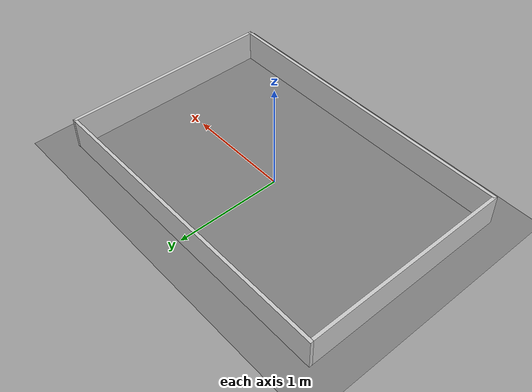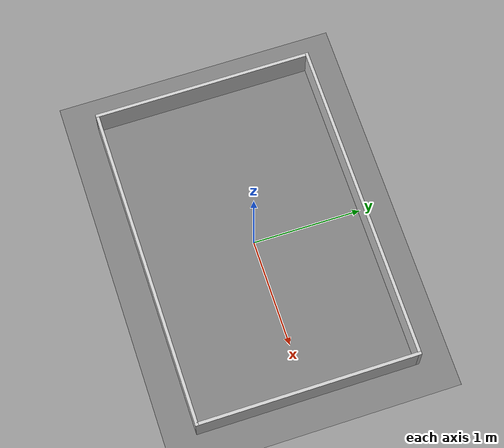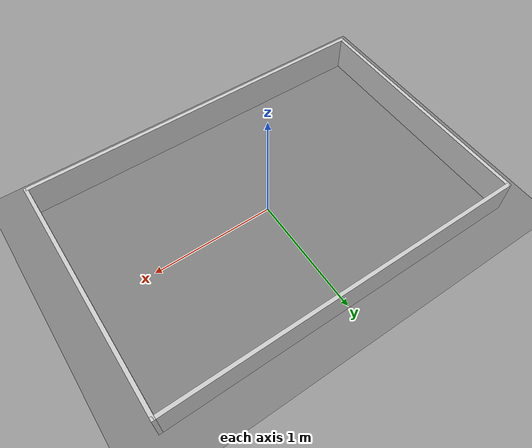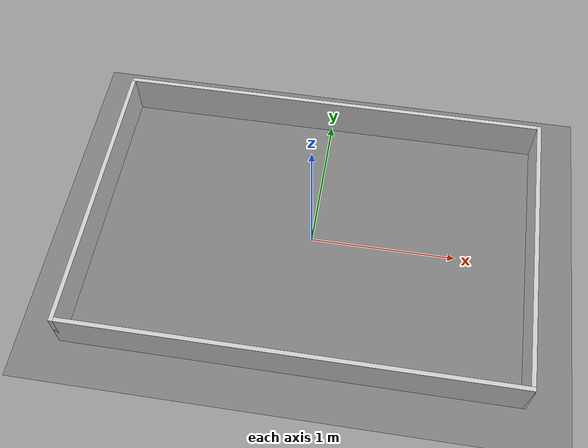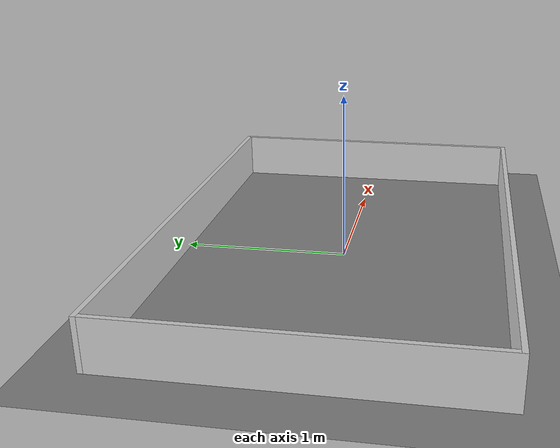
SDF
<sdf version='1.9'>
  <world name='default'>

    <plugin filename="gz-sim-physics-system" name="gz::sim::systems::Physics">
      <engine><filename>gz-physics-dartsim-plugin</filename></engine>
    </plugin>
    <plugin filename="gz-sim-user-commands-system" name="gz::sim::systems::UserCommands"/>
    <plugin filename="gz-sim-scene-broadcaster-system" name="gz::sim::systems::SceneBroadcaster"/>
    <plugin filename="gz-sim-sensors-system" name="gz::sim::systems::Sensors">
      <render_engine>ogre2</render_engine>
    </plugin>
    <plugin filename="gz-sim-imu-system" name="gz::sim::systems::Imu"/>
    <plugin filename="gz-sim-contact-system" name="gz::sim::systems::Contact"/>

    <light name='sun' type='directional'>
      <cast_shadows>1</cast_shadows>
      <pose>0 0 10 0 0 0</pose>
      <diffuse>0.8 0.8 0.8 1</diffuse>
      <specular>0.2 0.2 0.2 1</specular>
      <attenuation>
        <range>1000</range>
        <constant>0.9</constant>
        <linear>0.01</linear>
        <quadratic>0.001</quadratic>
      </attenuation>
      <direction>-0.5 0.1 -0.9</direction>
    </light>

    <model name='ground_plane'>
      <static>true</static>
      <link name='link'>
        <collision name='collision'>
          <geometry>
            <plane>
              <normal>0 0 1</normal>
              <size>100 100</size>
            </plane>
          </geometry>
          <surface>
            <friction>
              <ode>
                <mu>100</mu>
                <mu2>50</mu2>
              </ode>
            </friction>
          </surface>
        </collision>
        <visual name='visual'>
          <cast_shadows>false</cast_shadows>
          <geometry>
            <plane>
              <normal>0 0 1</normal>
              <size>100 100</size>
            </plane>
          </geometry>
          <material>
            <ambient>0.5 0.5 0.5 1</ambient>
            <diffuse>0.5 0.5 0.5 1</diffuse>
            <specular>0.1 0.1 0.1 1</specular>
          </material>
        </visual>
      </link>
    </model>

    <gravity>0 0 -9.8</gravity>
    <magnetic_field>6e-06 2.3e-05 -4.2e-05</magnetic_field>
    <atmosphere type='adiabatic'/>
    <physics type='ode'>
      <max_step_size>0.001</max_step_size>
      <real_time_factor>1</real_time_factor>
    </physics>
    <scene>
      <ambient>0.4 0.4 0.4 1</ambient>
      <background>0.7 0.7 0.7 1</background>
      <shadows>true</shadows>
    </scene>
    <spherical_coordinates>
      <surface_model>EARTH_WGS84</surface_model>
      <latitude_deg>0</latitude_deg>
      <longitude_deg>0</longitude_deg>
      <elevation>0</elevation>
      <heading_deg>0</heading_deg>
    </spherical_coordinates>

    <model name='room_walls'>
      <pose>0 0 0 0 0 0</pose>
      <static>true</static>
      <link name='Wall_0'>
        <collision name='Wall_0_Collision'>
          <geometry>
            <box><size>3.03 0.03 0.3</size></box>
          </geometry>
          <pose>0 0 0.15 0 0 0</pose>
        </collision>
        <visual name='Wall_0_Visual'>
          <pose>0 0 0.15 0 0 0</pose>
          <geometry>
            <box><size>3.03 0.03 0.3</size></box>
          </geometry>
          <material>
            <ambient>0.8 0.8 0.8 1</ambient>
            <diffuse>0.8 0.8 0.8 1</diffuse>
            <specular>0.2 0.2 0.2 1</specular>
          </material>
        </visual>
        <pose>0 -1 0 0 0 0</pose>
      </link>
      <link name='Wall_2'>
        <collision name='Wall_2_Collision'>
          <geometry>
            <box><size>2.03 0.03 0.3</size></box>
          </geometry>
          <pose>0 0 0.15 0 0 0</pose>
        </collision>
        <visual name='Wall_2_Visual'>
          <pose>0 0 0.15 0 0 0</pose>
          <geometry>
            <box><size>2.03 0.03 0.3</size></box>
          </geometry>
          <material>
            <ambient>0.8 0.8 0.8 1</ambient>
            <diffuse>0.8 0.8 0.8 1</diffuse>
            <specular>0.2 0.2 0.2 1</specular>
          </material>
        </visual>
        <pose>1.5 0 0 0 0 1.5708</pose>
      </link>
      <link name='Wall_4'>
        <collision name='Wall_4_Collision'>
          <geometry>
            <box><size>3.03 0.03 0.3</size></box>
          </geometry>
          <pose>0 0 0.15 0 0 0</pose>
        </collision>
        <visual name='Wall_4_Visual'>
          <pose>0 0 0.15 0 0 0</pose>
          <geometry>
            <box><size>3.03 0.03 0.3</size></box>
          </geometry>
          <material>
            <ambient>0.8 0.8 0.8 1</ambient>
            <diffuse>0.8 0.8 0.8 1</diffuse>
            <specular>0.2 0.2 0.2 1</specular>
          </material>
        </visual>
        <pose>0 1 0 0 0 3.14159</pose>
      </link>
      <link name='Wall_6'>
        <collision name='Wall_6_Collision'>
          <geometry>
            <box><size>2.03 0.03 0.3</size></box>
          </geometry>
          <pose>0 0 0.15 0 0 0</pose>
        </collision>
        <visual name='Wall_6_Visual'>
          <pose>0 0 0.15 0 0 0</pose>
          <geometry>
            <box><size>2.03 0.03 0.3</size></box>
          </geometry>
          <material>
            <ambient>0.8 0.8 0.8 1</ambient>
            <diffuse>0.8 0.8 0.8 1</diffuse>
            <specular>0.2 0.2 0.2 1</specular>
          </material>
        </visual>
        <pose>-1.5 0 0 0 0 -1.5708</pose>
      </link>
    </model>
  </world>
</sdf>
